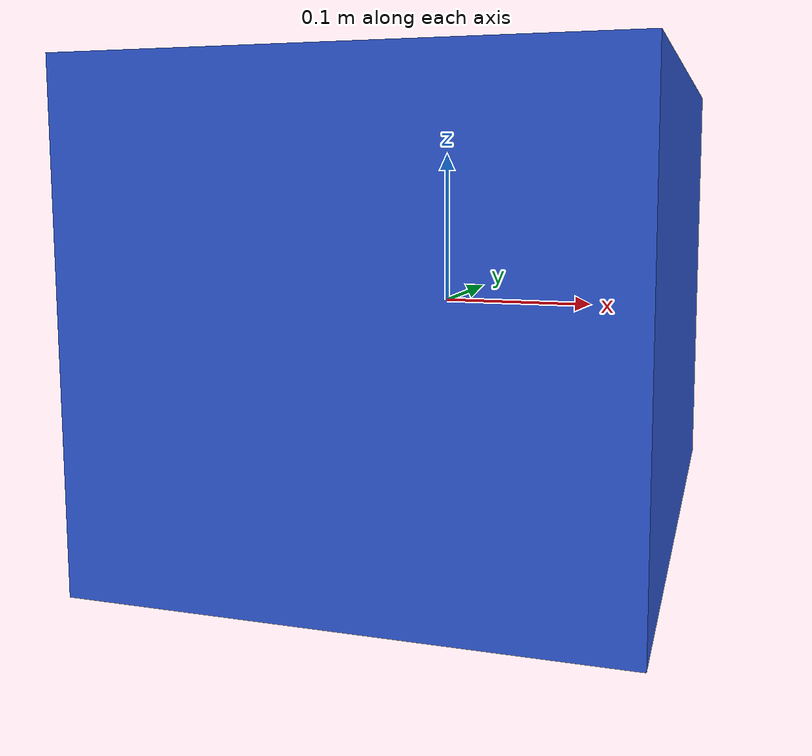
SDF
<?xml version="1.0" ?>
<sdf version="1.8">
  <model name="parked_car">
    <static>true</static>
    <link name="link">
      <collision name="collision">
        <geometry><box><size>0.32 0.42 0.30</size></box></geometry>
      </collision>
      <visual name="visual">
        <geometry><box><size>0.32 0.42 0.30</size></box></geometry>
        <material>
          <ambient>0.10 0.20 0.55 1</ambient>
          <diffuse>0.15 0.30 0.75 1</diffuse>
        </material>
      </visual>
    </link>
  </model>
</sdf>
